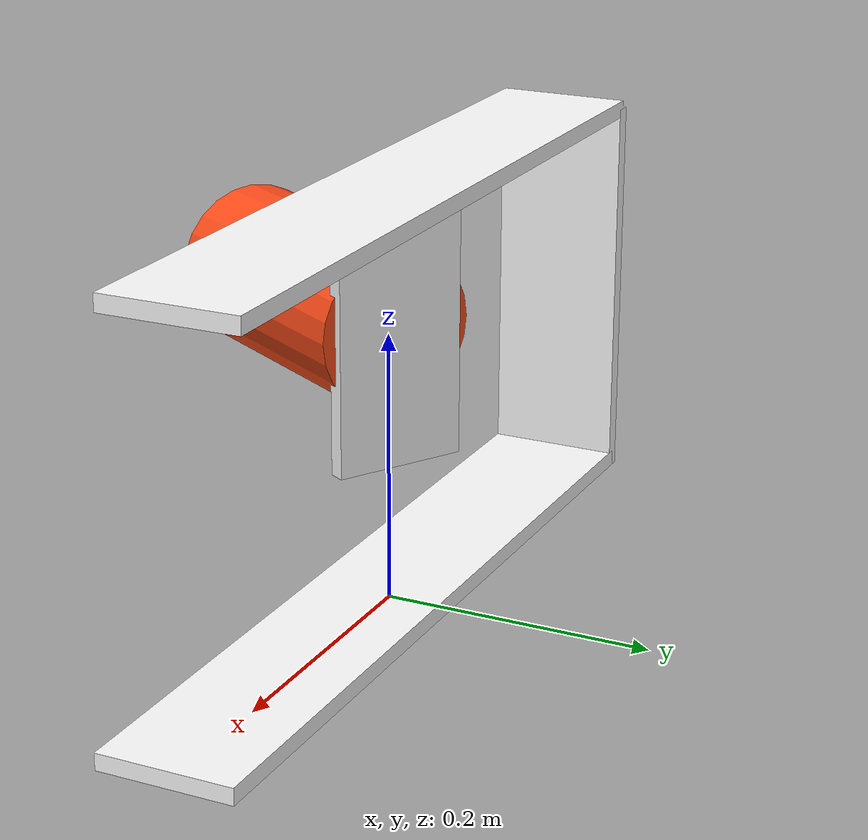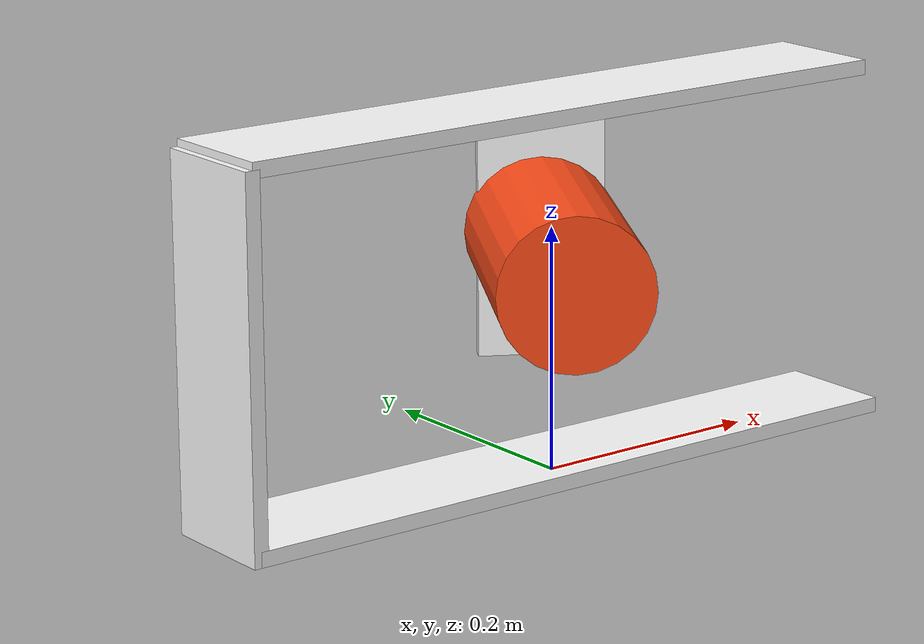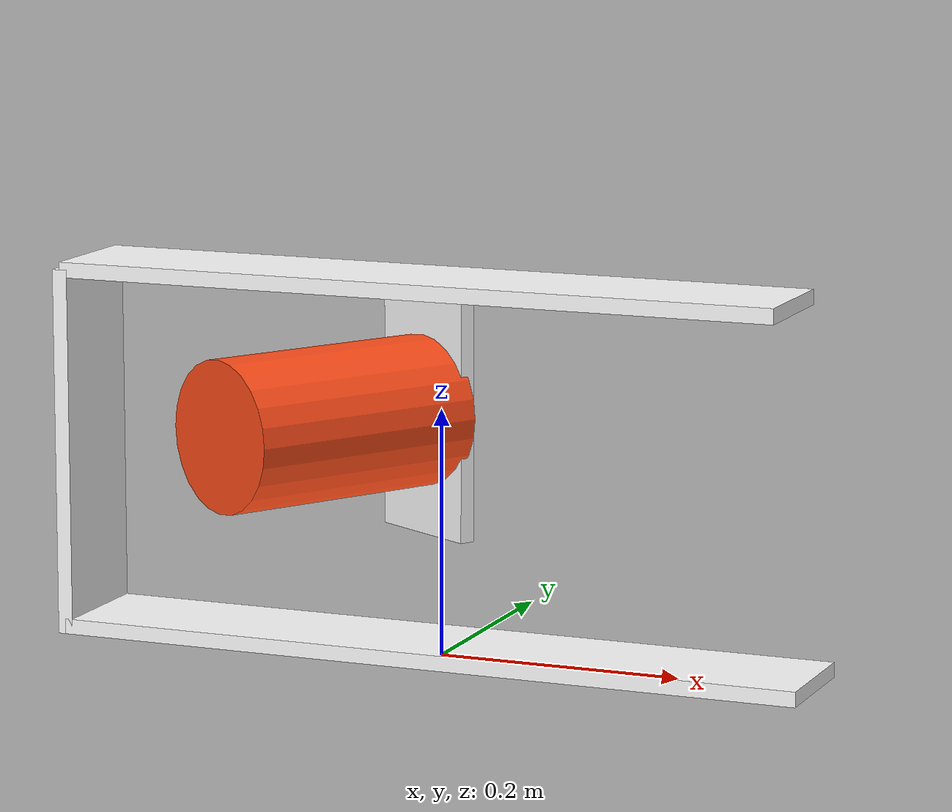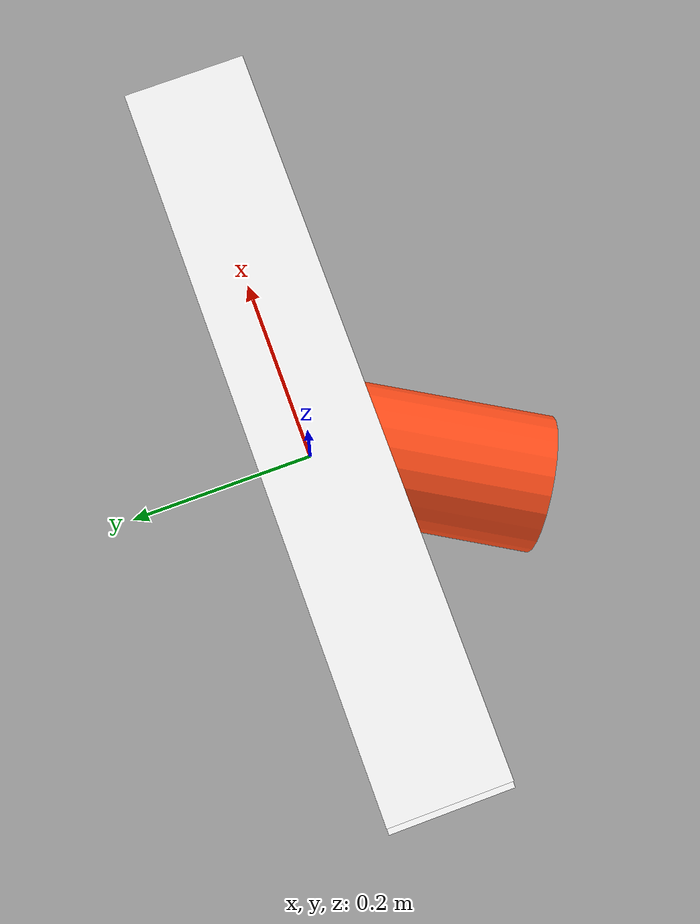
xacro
<?xml version="1.0"?>

<robot xmlns:xacro="http://www.ros.org/wiki/xacro" name="seastar">

<xacro:include filename="materials.xacro"/>
<xacro:include filename="macros.xacro"/>

!-- the IMU is fixed to the base of the robot -->
<link name="imu_link">
</link>

<joint name="imu_to_base" type="fixed">
	<parent link="imu_link"/>
	<child link="base_link"/>
	<origin xyz="0 0 0" rpy="0 0 ${pi}"/>
</joint>

<!-- the robot base is a 4in x 25in x 1/2 in alumin(i)um plate -->
<xacro:property name="base_l" value="0.6223"/>
<xacro:property name="base_w" value="0.100"/>
<xacro:property name="base_h" value="0.0124"/>
<xacro:property name="base_m" value="0.5"/>
<link name="base_link">
	<visual>
		<origin xyz="0 0 ${base_h/2}" rpy="0 0 0"/>
		<geometry>
			<box size="${base_l} ${base_w} ${base_h}"/>
		</geometry>
		<material name="white"/>
	</visual>
	<collision>
		<origin xyz="${base_l/2} ${base_w/2} ${base_h/2}" rpy="0 0 0"/>
		<geometry>
			<box size="${base_l} ${base_w} ${base_h}"/>
		</geometry>
	</collision>
	<xacro:inertial_box mass="${base_m}" x="${base_l}" y="${base_w}" z="${base_h}">
		<origin xyz="${base_l/2} ${base_w/2} ${base_h/2}" rpy="0 0 0"/>
	</xacro:inertial_box>
</link>
<!-- base to upright -->
<joint name="base_to_upright1_joint" type="fixed">
	<parent link="base_link"/>
	<child link="upright1_link"/>
	<origin xyz="${base_l/2} 0 0" rpy="0 -${pi/2} 0"/>
</joint>

<!-- the robot upright1 is a 4in x 12in x 1/2 in aluminium plate -->
<xacro:property name="upright1_l" value="0.3"/>
<xacro:property name="upright1_w" value="0.100"/>
<xacro:property name="upright1_h" value="0.0125"/>
<xacro:property name="upright1_m" value="0.5"/>
<link name="upright1_link">
	<visual>
		<origin xyz="${upright1_l/2} 0 0" rpy="0 0 0"/>
		<geometry>
			<box size="${upright1_l} ${upright1_w} ${upright1_h}"/>
		</geometry>
		<material name="white"/>
	</visual>
	<collision>
		<origin xyz="${upright1_l/2} 0 0" rpy="0 0 0"/>
		<geometry>
			<box size="${upright1_l} ${upright1_w} ${upright1_h}"/>
		</geometry>
	</collision>
	<xacro:inertial_box mass="${upright1_m}" x="${upright1_l}" y="${upright1_w}" z="${upright1_h}">
		<origin xyz="${upright1_l/2} 0 0" rpy="0 0 0"/>
	</xacro:inertial_box>
</link>
<!-- upright to roll -->
<joint name="upright1_to_roll_joint" type="revolute">
	<parent link="upright1_link"/>
	<child link="roll_link"/>
	<origin xyz="${upright1_l} 0 0" rpy="0 -${pi/2} 0"/>
	<axis xyz="1 0 0"/>
	<limit lower="-3.64774" upper="0.558505" velocity="100" effort="100"/>
</joint>

<!-- the robot roll_link is a 4in x xxin x 1/2 in aluminium plate between the two uprights -->
<xacro:property name="roll_l" value="0.6"/>
<xacro:property name="roll_w" value="0.100"/>
<xacro:property name="roll_h" value="0.0125"/>
<xacro:property name="roll_m" value="0.5"/>
<link name="roll_link">
	<visual>
		<origin xyz="${roll_l/2} 0 0" rpy="0 0 0"/>
		<geometry>
			<box size="${roll_l} ${roll_w} ${roll_h}"/>
		</geometry>
		<material name="white"/>
	</visual>
	<collision>
		<origin xyz="${roll_l/2} 0 0" rpy="0 0 0"/>
		<geometry>
			<box size="${roll_l} ${roll_w} ${roll_h}"/>
		</geometry>
	</collision>
	<xacro:inertial_box mass="${roll_m}" x="${roll_l}" y="${roll_w}" z="${roll_h}">
		<origin xyz="${roll_l/2} 0 0" rpy="0 0 0"/>
	</xacro:inertial_box>
</link>

<!-- roll to pitch-->
<joint name="roll_to_pitch_joint" type="revolute">
	<parent link="roll_link"/>
	<child link="pitch_link"/>
	<origin xyz="${roll_l/2} 0 0" rpy="0 -${pi/2} 0"/>
	<axis xyz="1 0 0"/>
	<limit lower="${pi}" upper="7.34784" velocity="100" effort="100"/>
</joint>

<!-- the robot pitch_link is ??? -->
<xacro:property name="pitch_l" value="0.2"/>
<xacro:property name="pitch_w" value="0.100"/>
<xacro:property name="pitch_h" value="0.0125"/>
<xacro:property name="pitch_m" value="0.5"/>
<link name="pitch_link">
	<visual>
		<origin xyz="${pitch_l/2} 0 0" rpy="0 0 0"/>
		<geometry>
			<box size="${pitch_l} ${pitch_w} ${pitch_h}"/>
		</geometry>
		<material name="white"/>
	</visual>
	<collision>
		<origin xyz="${pitch_l/2} 0 0" rpy="0 0 0"/>
		<geometry>
			<box size="${pitch_l} ${pitch_w} ${pitch_h}"/>
		</geometry>
	</collision>
	<xacro:inertial_box mass="${pitch_m}" x="${pitch_l}" y="${pitch_w}" z="${pitch_h}">
		<origin xyz="${pitch_l/2} 0 0" rpy="0 0 0"/>
	</xacro:inertial_box>
</link>

<!-- pitch to stokes -->
<joint name="pitch_to_stokes_joint" type="revolute">
	<parent link="pitch_link"/>
	<child link="stokes_link"/>
	<origin xyz="${pitch_l/2} 0 0" rpy="0 -${pi/2} 0"/>
	<axis xyz="1 0 0"/>
	<limit lower="-${pi}" upper="${pi}" velocity="100" effort="100"/>
</joint>

<!-- the robot stokes_link is ??? -->
<xacro:property name="stokes_l" value="0.2"/>
<xacro:property name="stokes_r" value="0.060"/>
<xacro:property name="stokes_m" value="0.5"/>
<link name="stokes_link">
	<visual>
		<origin xyz="${stokes_l/2} 0 0" rpy="0 ${pi/2} 0"/>
		<geometry>
			<cylinder length="${stokes_l}" radius="${stokes_r}"/>
		</geometry>
		<material name="orange"/>
	</visual>
	<collision>
		<origin xyz="${stokes_l/2} 0 0" rpy="0 0 0"/>
		<geometry>
			<cylinder length="${stokes_l}" radius="${stokes_r}"/>
		</geometry>
	</collision>
	<xacro:inertial_cylinder mass="${stokes_m}" h="${stokes_l}" r="${stokes_r}">
		<origin xyz="${stokes_l/2} 0 0" rpy="0 0 0"/>
	</xacro:inertial_cylinder>
</link>

</robot>

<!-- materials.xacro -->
<robot xmlns:xacro="http://www.ros.org/wiki/xacro">

<material name="white">
	<color rgba="1 1 1 1"/>
</material>

<material name="orange">
	<color rgba="1 0.3 0.1 1"/>
</material>

<material name="blue">
	<color rgba="0.2 0.2 1 1"/>
</material>

</robot>

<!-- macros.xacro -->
<robot xmlns:xacro="http://www.ros.org/wiki/xacro">

<xacro:macro name="inertial_box" params="mass x y z *origin">
	<inertial>
		<xacro:insert_block name="origin"/>
		<mass value="${mass}" />
		<inertia ixx="${(1/12) * mass * (y*y+z*z)}" ixy="0.0" ixz="0.0"
			iyy="${(1/12) * mass * (x*x+z*z)}" iyz="0.0"
			izz="${(1/12) * mass * (x*x+y*y)}" />
	</inertial>
</xacro:macro>

<xacro:macro name="inertial_cylinder" params="mass h r *origin">
	<inertial>
		<xacro:insert_block name="origin"/>
		<mass value="${mass}" />
		<inertia ixx="${mass*(3*r*r+h*h)/12}" ixy="0.0" ixz="0.0"
			iyy="${mass*(3*r*r+h*h)/12}" iyz="0.0"
			izz="${mass*r*r/2}" />
	</inertial>
</xacro:macro>

</robot>
